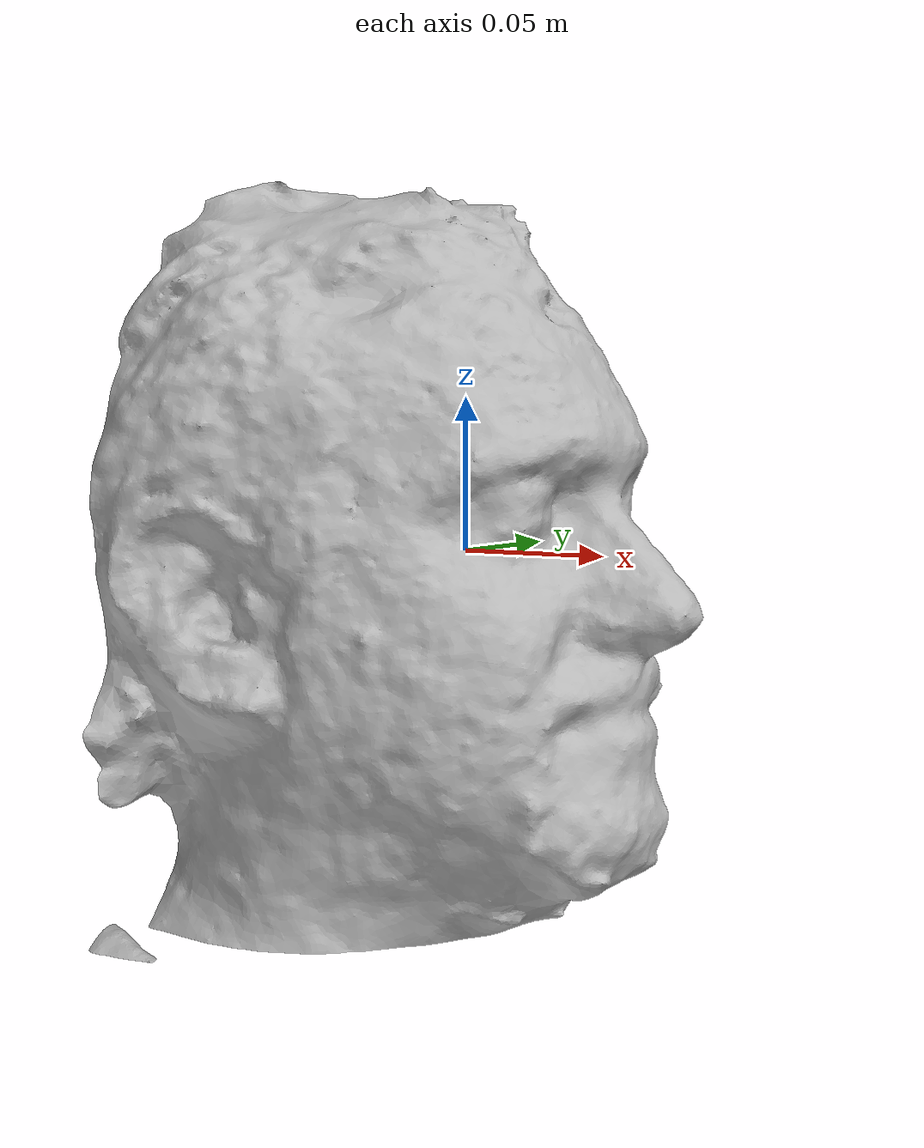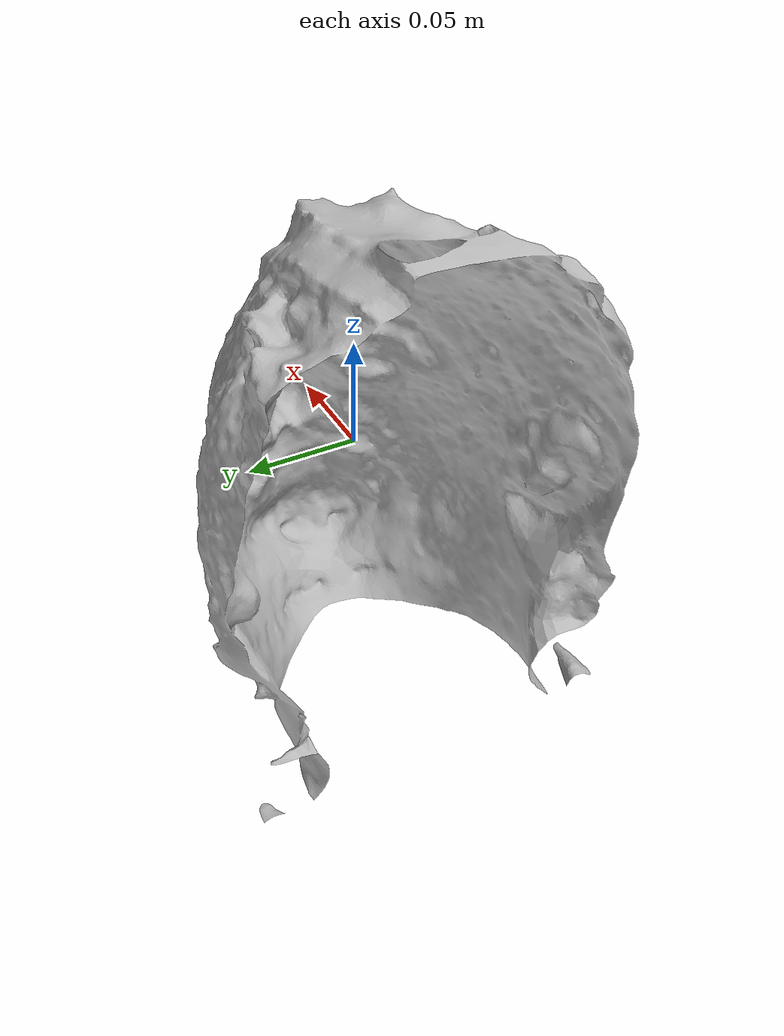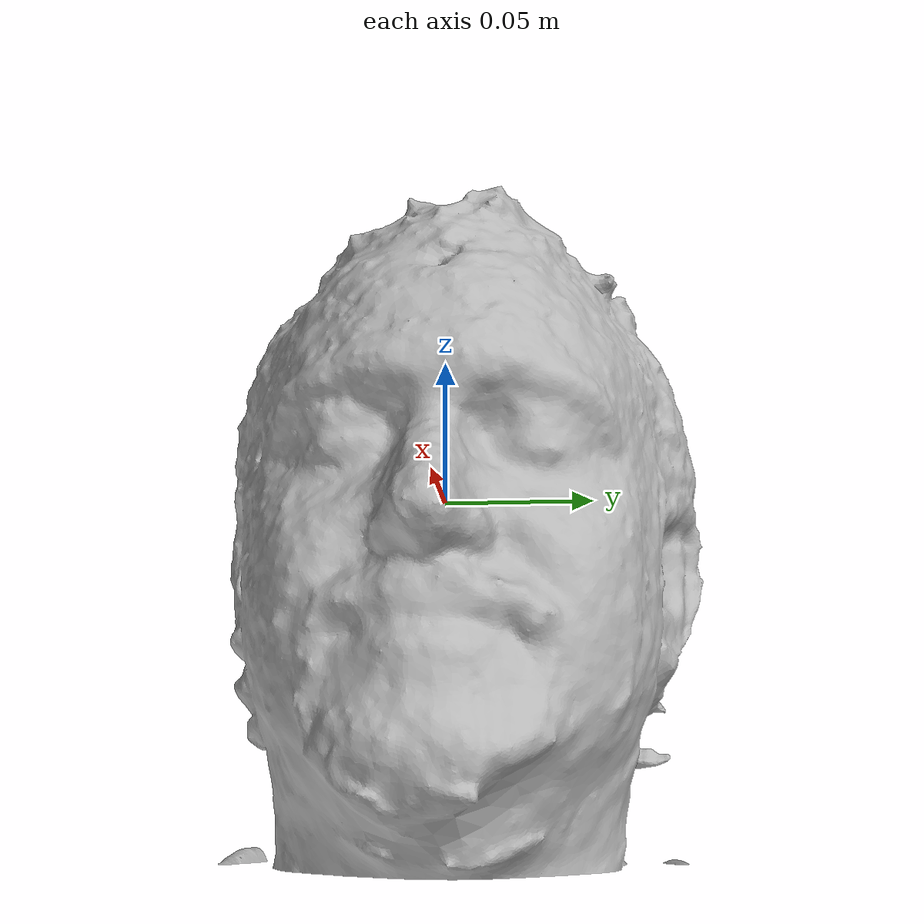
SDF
<?xml version="1.0"?>
<sdf version="1.8">
  <model name="db_face">
    <static>true</static>
    <link name="face_link">
      <visual name="face_visual">
        <pose>-0.0315 -0.007 -0.342 1.5708 0 1.5708</pose>
        <geometry>
          <mesh>
            <uri>meshes/DB_Face.glb</uri>
          </mesh>
        </geometry>
      </visual>
    </link>
  </model>
</sdf>
